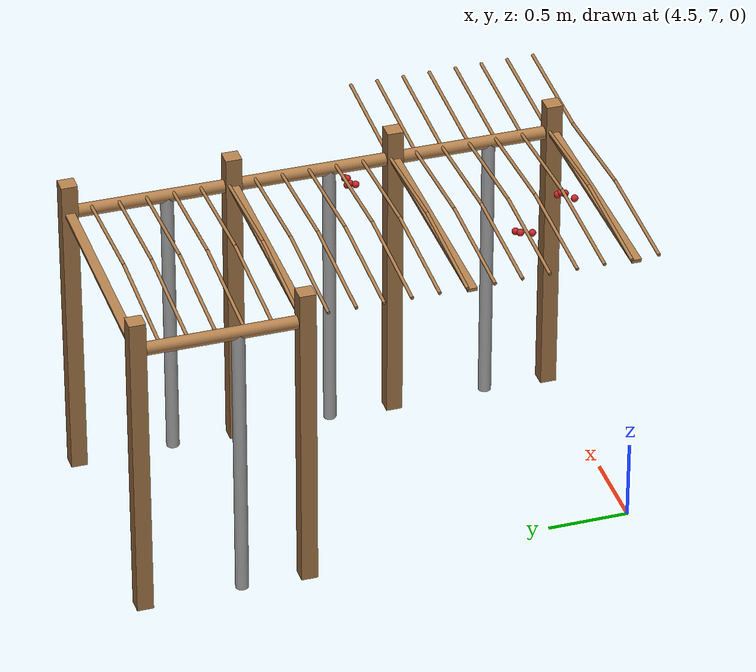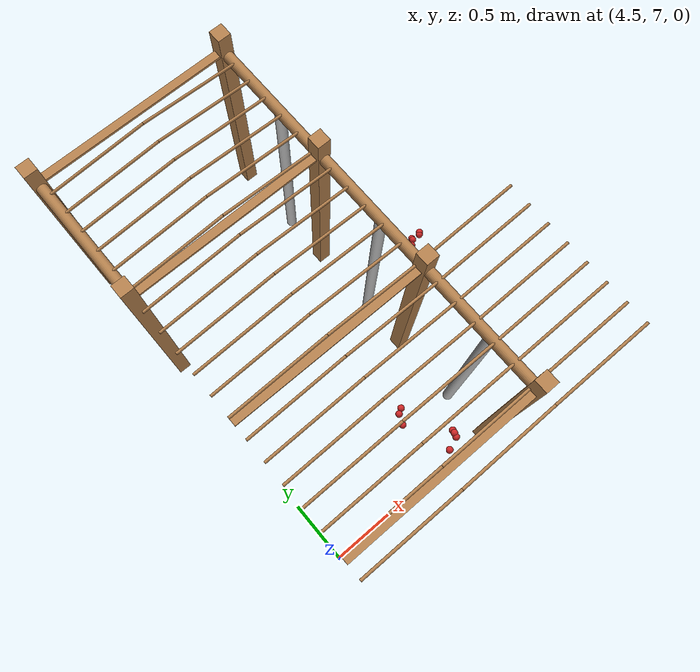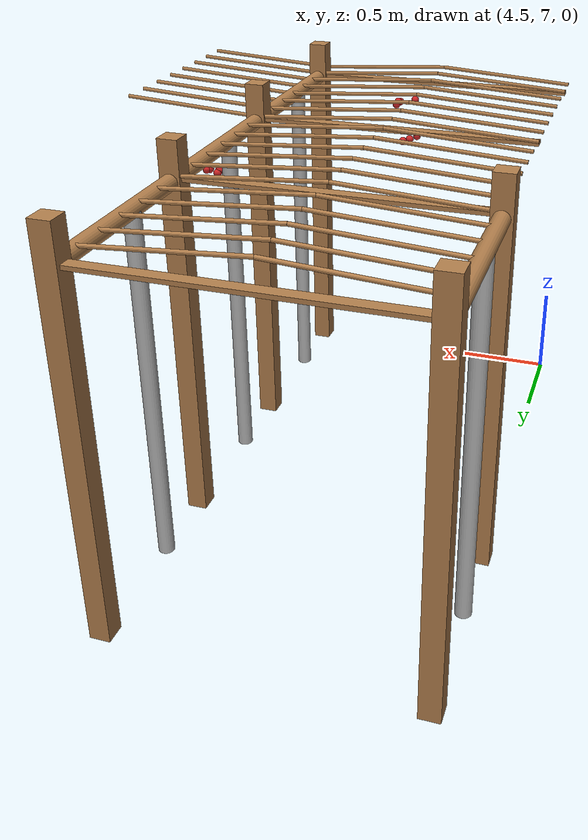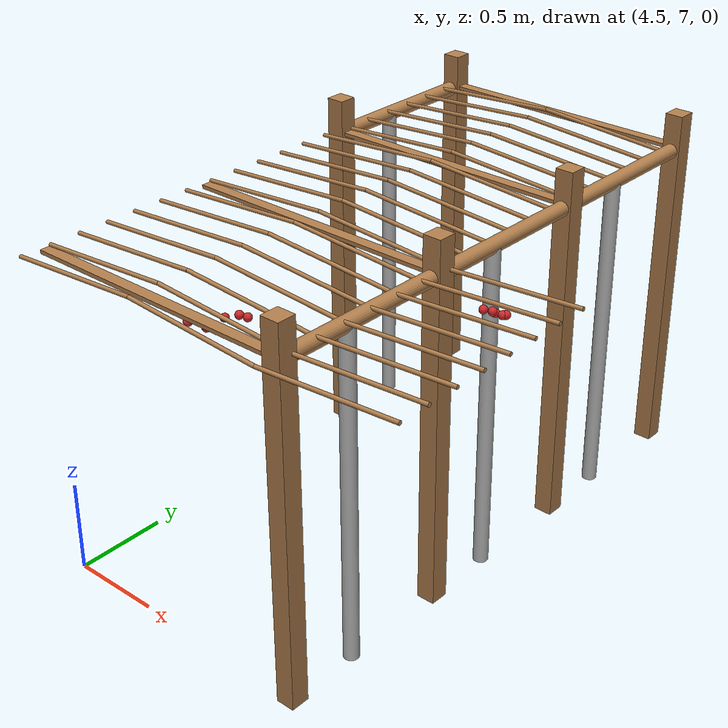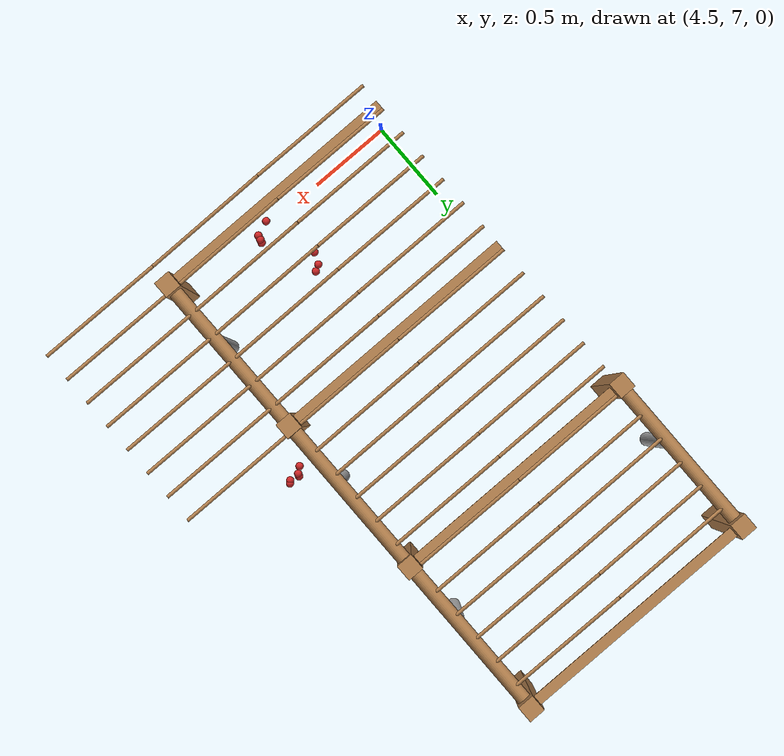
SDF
<sdf version="1.4">
 <model name="pergola">
  <include><name>post_42</name><pose>4.5 9.0 0 0 0 0</pose><uri>model://post</uri></include>
  <include><name>post_43</name><pose>4.5 10.0 0 0 0 0</pose><uri>model://post</uri></include>
  <include><name>post_51</name><pose>6.0 7.0 0 0 0 0</pose><uri>model://post</uri></include>
  <include><name>post_52</name><pose>6.0 8.0 0 0 0 0</pose><uri>model://post</uri></include>
  <include><name>post_53</name><pose>6.0 9.0 0 0 0 0</pose><uri>model://post</uri></include>
  <include><name>post_54</name><pose>6.0 10.0 0 0 0 0</pose><uri>model://post</uri></include>
  <link name="beam_40">
   <pose>5.25 7.0 1.81 0 0 0</pose>
   <collision name="collision"><geometry><box><size>1.5 0.06 0.02</size></box></geometry></collision>
   <visual name="visual">
    <geometry><box><size>1.5 0.06 0.02</size></box></geometry>
    <material><script><name>Gazebo/Wood</name></script></material>
   </visual>
   <inertial>
    <mass>5</mass>
    <inertia>
     <ixx>0.0016666666666666668</ixx>
     <ixy>0.0</ixy>
     <ixz>0.0</ixz>
     <iyy>0.9390000000000001</iyy>
     <iyz>0.0</iyz>
     <izz>0.9376666666666665</izz>
    </inertia>
   </inertial>
  </link>
  <link name="beam_41">
   <pose>5.25 8.0 1.81 0 0 0</pose>
   <collision name="collision"><geometry><box><size>1.5 0.06 0.02</size></box></geometry></collision>
   <visual name="visual">
    <geometry><box><size>1.5 0.06 0.02</size></box></geometry>
    <material><script><name>Gazebo/Wood</name></script></material>
   </visual>
   <inertial>
    <mass>5</mass>
    <inertia>
     <ixx>0.0016666666666666668</ixx>
     <ixy>0.0</ixy>
     <ixz>0.0</ixz>
     <iyy>0.9390000000000001</iyy>
     <iyz>0.0</iyz>
     <izz>0.9376666666666665</izz>
    </inertia>
   </inertial>
  </link>
  <link name="beam_42">
   <pose>5.25 9.0 1.81 0 0 0</pose>
   <collision name="collision"><geometry><box><size>1.5 0.06 0.02</size></box></geometry></collision>
   <visual name="visual">
    <geometry><box><size>1.5 0.06 0.02</size></box></geometry>
    <material><script><name>Gazebo/Wood</name></script></material>
   </visual>
   <inertial>
    <mass>5</mass>
    <inertia>
     <ixx>0.0016666666666666668</ixx>
     <ixy>0.0</ixy>
     <ixz>0.0</ixz>
     <iyy>0.9390000000000001</iyy>
     <iyz>0.0</iyz>
     <izz>0.9376666666666665</izz>
    </inertia>
   </inertial>
  </link>
  <link name="beam_43">
   <pose>5.25 10.0 1.81 0 0 0</pose>
   <collision name="collision"><geometry><box><size>1.5 0.06 0.02</size></box></geometry></collision>
   <visual name="visual">
    <geometry><box><size>1.5 0.06 0.02</size></box></geometry>
    <material><script><name>Gazebo/Wood</name></script></material>
   </visual>
   <inertial>
    <mass>5</mass>
    <inertia>
     <ixx>0.0016666666666666668</ixx>
     <ixy>0.0</ixy>
     <ixz>0.0</ixz>
     <iyy>0.9390000000000001</iyy>
     <iyz>0.0</iyz>
     <izz>0.9376666666666665</izz>
    </inertia>
   </inertial>
  </link>
  <include><name>tree_39</name><pose>4.5 9.4 0 0 0 0</pose><uri>model://tree_trunk</uri></include>
  <include><name>tree_47</name><pose>6.0 7.4 0 0 0 0</pose><uri>model://tree_trunk</uri></include>
  <include><name>tree_48</name><pose>6.0 8.4 0 0 0 0</pose><uri>model://tree_trunk</uri></include>
  <include><name>tree_49</name><pose>6.0 9.4 0 0 0 0</pose><uri>model://tree_trunk</uri></include>
  <link name="baseBranch_39">
   <pose>4.5 9.5 1.8 1.5707963267948966 0 0</pose>
   <collision name="collision">
    <geometry><cylinder><radius>0.04</radius><length>0.94</length></cylinder></geometry>
   </collision>
   <visual name="visual">
    <geometry><cylinder><radius>0.04</radius><length>0.94</length></cylinder></geometry>
    <material><script><name>Gazebo/WoodFloor</name></script></material>
   </visual>
   <inertial>
    <mass>10</mass>
    <inertia>
     <ixx>0.7403333333333334</ixx>
     <ixy>0.0</ixy>
     <ixz>0.0</ixz>
     <iyy>0.7403333333333334</iyy>
     <iyz>0.0</iyz>
     <izz>0.008</izz>
    </inertia>
   </inertial>
  </link>
  <link name="baseBranch_47">
   <pose>6.0 7.5 1.8 1.5707963267948966 0 0</pose>
   <collision name="collision">
    <geometry><cylinder><radius>0.04</radius><length>0.94</length></cylinder></geometry>
   </collision>
   <visual name="visual">
    <geometry><cylinder><radius>0.04</radius><length>0.94</length></cylinder></geometry>
    <material><script><name>Gazebo/WoodFloor</name></script></material>
   </visual>
   <inertial>
    <mass>10</mass>
    <inertia>
     <ixx>0.7403333333333334</ixx>
     <ixy>0.0</ixy>
     <ixz>0.0</ixz>
     <iyy>0.7403333333333334</iyy>
     <iyz>0.0</iyz>
     <izz>0.008</izz>
    </inertia>
   </inertial>
  </link>
  <link name="baseBranch_48">
   <pose>6.0 8.5 1.8 1.5707963267948966 0 0</pose>
   <collision name="collision">
    <geometry><cylinder><radius>0.04</radius><length>0.94</length></cylinder></geometry>
   </collision>
   <visual name="visual">
    <geometry><cylinder><radius>0.04</radius><length>0.94</length></cylinder></geometry>
    <material><script><name>Gazebo/WoodFloor</name></script></material>
   </visual>
   <inertial>
    <mass>10</mass>
    <inertia>
     <ixx>0.7403333333333334</ixx>
     <ixy>0.0</ixy>
     <ixz>0.0</ixz>
     <iyy>0.7403333333333334</iyy>
     <iyz>0.0</iyz>
     <izz>0.008</izz>
    </inertia>
   </inertial>
  </link>
  <link name="baseBranch_49">
   <pose>6.0 9.5 1.8 1.5707963267948966 0 0</pose>
   <collision name="collision">
    <geometry><cylinder><radius>0.04</radius><length>0.94</length></cylinder></geometry>
   </collision>
   <visual name="visual">
    <geometry><cylinder><radius>0.04</radius><length>0.94</length></cylinder></geometry>
    <material><script><name>Gazebo/WoodFloor</name></script></material>
   </visual>
   <inertial>
    <mass>10</mass>
    <inertia>
     <ixx>0.7403333333333334</ixx>
     <ixy>0.0</ixy>
     <ixz>0.0</ixz>
     <iyy>0.7403333333333334</iyy>
     <iyz>0.0</iyz>
     <izz>0.008</izz>
    </inertia>
   </inertial>
  </link>
  <link name="vine_442">
   <pose>4.875 6.863333333333333 1.85 0 1.5042281630190728 0</pose>
   <collision name="collision">
    <geometry><cylinder><radius>0.01</radius><length>0.7516648189186453</length></cylinder></geometry>
   </collision>
   <visual name="visual">
    <geometry><cylinder><radius>0.01</radius><length>0.7516648189186453</length></cylinder></geometry>
    <material><script><name>Gazebo/WoodFloor</name></script></material>
   </visual>
   <inertial>
    <mass>5</mass>
    <inertia>
     <ixx>0.23554166666666657</ixx>
     <ixy>0.0</ixy>
     <ixz>0.0</ixz>
     <iyy>0.23554166666666657</iyy>
     <iyz>0.0</iyz>
     <izz>0.00025</izz>
    </inertia>
   </inertial>
  </link>
  <link name="vine_443">
   <pose>5.625 6.863333333333333 1.85 0 -1.5042281630190728 0</pose>
   <collision name="collision">
    <geometry><cylinder><radius>0.01</radius><length>0.7516648189186453</length></cylinder></geometry>
   </collision>
   <visual name="visual">
    <geometry><cylinder><radius>0.01</radius><length>0.7516648189186453</length></cylinder></geometry>
    <material><script><name>Gazebo/WoodFloor</name></script></material>
   </visual>
   <inertial>
    <mass>5</mass>
    <inertia>
     <ixx>0.23554166666666657</ixx>
     <ixy>0.0</ixy>
     <ixz>0.0</ixz>
     <iyy>0.23554166666666657</iyy>
     <iyz>0.0</iyz>
     <izz>0.00025</izz>
    </inertia>
   </inertial>
  </link>
  <link name="vine_444">
   <pose>4.875 7.03 1.85 0 1.5042281630190728 0</pose>
   <collision name="collision">
    <geometry><cylinder><radius>0.01</radius><length>0.7516648189186453</length></cylinder></geometry>
   </collision>
   <visual name="visual">
    <geometry><cylinder><radius>0.01</radius><length>0.7516648189186453</length></cylinder></geometry>
    <material><script><name>Gazebo/WoodFloor</name></script></material>
   </visual>
   <inertial>
    <mass>5</mass>
    <inertia>
     <ixx>0.23554166666666657</ixx>
     <ixy>0.0</ixy>
     <ixz>0.0</ixz>
     <iyy>0.23554166666666657</iyy>
     <iyz>0.0</iyz>
     <izz>0.00025</izz>
    </inertia>
   </inertial>
  </link>
  <link name="vine_445">
   <pose>5.625 7.03 1.85 0 -1.5042281630190728 0</pose>
   <collision name="collision">
    <geometry><cylinder><radius>0.01</radius><length>0.7516648189186453</length></cylinder></geometry>
   </collision>
   <visual name="visual">
    <geometry><cylinder><radius>0.01</radius><length>0.7516648189186453</length></cylinder></geometry>
    <material><script><name>Gazebo/WoodFloor</name></script></material>
   </visual>
   <inertial>
    <mass>5</mass>
    <inertia>
     <ixx>0.23554166666666657</ixx>
     <ixy>0.0</ixy>
     <ixz>0.0</ixz>
     <iyy>0.23554166666666657</iyy>
     <iyz>0.0</iyz>
     <izz>0.00025</izz>
    </inertia>
   </inertial>
  </link>
  <link name="vine_446">
   <pose>4.875 7.196666666666666 1.85 0 1.5042281630190728 0</pose>
   <collision name="collision">
    <geometry><cylinder><radius>0.01</radius><length>0.7516648189186453</length></cylinder></geometry>
   </collision>
   <visual name="visual">
    <geometry><cylinder><radius>0.01</radius><length>0.7516648189186453</length></cylinder></geometry>
    <material><script><name>Gazebo/WoodFloor</name></script></material>
   </visual>
   <inertial>
    <mass>5</mass>
    <inertia>
     <ixx>0.23554166666666657</ixx>
     <ixy>0.0</ixy>
     <ixz>0.0</ixz>
     <iyy>0.23554166666666657</iyy>
     <iyz>0.0</iyz>
     <izz>0.00025</izz>
    </inertia>
   </inertial>
  </link>
  <link name="vine_447">
   <pose>5.625 7.196666666666666 1.85 0 -1.5042281630190728 0</pose>
   <collision name="collision">
    <geometry><cylinder><radius>0.01</radius><length>0.7516648189186453</length></cylinder></geometry>
   </collision>
   <visual name="visual">
    <geometry><cylinder><radius>0.01</radius><length>0.7516648189186453</length></cylinder></geometry>
    <material><script><name>Gazebo/WoodFloor</name></script></material>
   </visual>
   <inertial>
    <mass>5</mass>
    <inertia>
     <ixx>0.23554166666666657</ixx>
     <ixy>0.0</ixy>
     <ixz>0.0</ixz>
     <iyy>0.23554166666666657</iyy>
     <iyz>0.0</iyz>
     <izz>0.00025</izz>
    </inertia>
   </inertial>
  </link>
  <link name="vine_448">
   <pose>4.875 7.363333333333333 1.85 0 1.5042281630190728 0</pose>
   <collision name="collision">
    <geometry><cylinder><radius>0.01</radius><length>0.7516648189186453</length></cylinder></geometry>
   </collision>
   <visual name="visual">
    <geometry><cylinder><radius>0.01</radius><length>0.7516648189186453</length></cylinder></geometry>
    <material><script><name>Gazebo/WoodFloor</name></script></material>
   </visual>
   <inertial>
    <mass>5</mass>
    <inertia>
     <ixx>0.23554166666666657</ixx>
     <ixy>0.0</ixy>
     <ixz>0.0</ixz>
     <iyy>0.23554166666666657</iyy>
     <iyz>0.0</iyz>
     <izz>0.00025</izz>
    </inertia>
   </inertial>
  </link>
  <link name="vine_449">
   <pose>5.625 7.363333333333333 1.85 0 -1.5042281630190728 0</pose>
   <collision name="collision">
    <geometry><cylinder><radius>0.01</radius><length>0.7516648189186453</length></cylinder></geometry>
   </collision>
   <visual name="visual">
    <geometry><cylinder><radius>0.01</radius><length>0.7516648189186453</length></cylinder></geometry>
    <material><script><name>Gazebo/WoodFloor</name></script></material>
   </visual>
   <inertial>
    <mass>5</mass>
    <inertia>
     <ixx>0.23554166666666657</ixx>
     <ixy>0.0</ixy>
     <ixz>0.0</ixz>
     <iyy>0.23554166666666657</iyy>
     <iyz>0.0</iyz>
     <izz>0.00025</izz>
    </inertia>
   </inertial>
  </link>
  <link name="vine_450">
   <pose>4.875 7.53 1.85 0 1.5042281630190728 0</pose>
   <collision name="collision">
    <geometry><cylinder><radius>0.01</radius><length>0.7516648189186453</length></cylinder></geometry>
   </collision>
   <visual name="visual">
    <geometry><cylinder><radius>0.01</radius><length>0.7516648189186453</length></cylinder></geometry>
    <material><script><name>Gazebo/WoodFloor</name></script></material>
   </visual>
   <inertial>
    <mass>5</mass>
    <inertia>
     <ixx>0.23554166666666657</ixx>
     <ixy>0.0</ixy>
     <ixz>0.0</ixz>
     <iyy>0.23554166666666657</iyy>
     <iyz>0.0</iyz>
     <izz>0.00025</izz>
    </inertia>
   </inertial>
  </link>
  <link name="vine_451">
   <pose>5.625 7.53 1.85 0 -1.5042281630190728 0</pose>
   <collision name="collision">
    <geometry><cylinder><radius>0.01</radius><length>0.7516648189186453</length></cylinder></geometry>
   </collision>
   <visual name="visual">
    <geometry><cylinder><radius>0.01</radius><length>0.7516648189186453</length></cylinder></geometry>
    <material><script><name>Gazebo/WoodFloor</name></script></material>
   </visual>
   <inertial>
    <mass>5</mass>
    <inertia>
     <ixx>0.23554166666666657</ixx>
     <ixy>0.0</ixy>
     <ixz>0.0</ixz>
     <iyy>0.23554166666666657</iyy>
     <iyz>0.0</iyz>
     <izz>0.00025</izz>
    </inertia>
   </inertial>
  </link>
  <link name="vine_452">
   <pose>4.875 7.696666666666666 1.85 0 1.5042281630190728 0</pose>
   <collision name="collision">
    <geometry><cylinder><radius>0.01</radius><length>0.7516648189186453</length></cylinder></geometry>
   </collision>
   <visual name="visual">
    <geometry><cylinder><radius>0.01</radius><length>0.7516648189186453</length></cylinder></geometry>
    <material><script><name>Gazebo/WoodFloor</name></script></material>
   </visual>
   <inertial>
    <mass>5</mass>
    <inertia>
     <ixx>0.23554166666666657</ixx>
     <ixy>0.0</ixy>
     <ixz>0.0</ixz>
     <iyy>0.23554166666666657</iyy>
     <iyz>0.0</iyz>
     <izz>0.00025</izz>
    </inertia>
   </inertial>
  </link>
  <link name="vine_453">
   <pose>5.625 7.696666666666666 1.85 0 -1.5042281630190728 0</pose>
   <collision name="collision">
    <geometry><cylinder><radius>0.01</radius><length>0.7516648189186453</length></cylinder></geometry>
   </collision>
   <visual name="visual">
    <geometry><cylinder><radius>0.01</radius><length>0.7516648189186453</length></cylinder></geometry>
    <material><script><name>Gazebo/WoodFloor</name></script></material>
   </visual>
   <inertial>
    <mass>5</mass>
    <inertia>
     <ixx>0.23554166666666657</ixx>
     <ixy>0.0</ixy>
     <ixz>0.0</ixz>
     <iyy>0.23554166666666657</iyy>
     <iyz>0.0</iyz>
     <izz>0.00025</izz>
    </inertia>
   </inertial>
  </link>
  <link name="vine_454">
   <pose>4.875 7.863333333333333 1.85 0 1.5042281630190728 0</pose>
   <collision name="collision">
    <geometry><cylinder><radius>0.01</radius><length>0.7516648189186453</length></cylinder></geometry>
   </collision>
   <visual name="visual">
    <geometry><cylinder><radius>0.01</radius><length>0.7516648189186453</length></cylinder></geometry>
    <material><script><name>Gazebo/WoodFloor</name></script></material>
   </visual>
   <inertial>
    <mass>5</mass>
    <inertia>
     <ixx>0.23554166666666657</ixx>
     <ixy>0.0</ixy>
     <ixz>0.0</ixz>
     <iyy>0.23554166666666657</iyy>
     <iyz>0.0</iyz>
     <izz>0.00025</izz>
    </inertia>
   </inertial>
  </link>
  <link name="vine_455">
   <pose>5.625 7.863333333333333 1.85 0 -1.5042281630190728 0</pose>
   <collision name="collision">
    <geometry><cylinder><radius>0.01</radius><length>0.7516648189186453</length></cylinder></geometry>
   </collision>
   <visual name="visual">
    <geometry><cylinder><radius>0.01</radius><length>0.7516648189186453</length></cylinder></geometry>
    <material><script><name>Gazebo/WoodFloor</name></script></material>
   </visual>
   <inertial>
    <mass>5</mass>
    <inertia>
     <ixx>0.23554166666666657</ixx>
     <ixy>0.0</ixy>
     <ixz>0.0</ixz>
     <iyy>0.23554166666666657</iyy>
     <iyz>0.0</iyz>
     <izz>0.00025</izz>
    </inertia>
   </inertial>
  </link>
  <link name="vine_456">
   <pose>4.875 8.03 1.85 0 1.5042281630190728 0</pose>
   <collision name="collision">
    <geometry><cylinder><radius>0.01</radius><length>0.7516648189186453</length></cylinder></geometry>
   </collision>
   <visual name="visual">
    <geometry><cylinder><radius>0.01</radius><length>0.7516648189186453</length></cylinder></geometry>
    <material><script><name>Gazebo/WoodFloor</name></script></material>
   </visual>
   <inertial>
    <mass>5</mass>
    <inertia>
     <ixx>0.23554166666666657</ixx>
     <ixy>0.0</ixy>
     <ixz>0.0</ixz>
     <iyy>0.23554166666666657</iyy>
     <iyz>0.0</iyz>
     <izz>0.00025</izz>
    </inertia>
   </inertial>
  </link>
  <link name="vine_457">
   <pose>5.625 8.03 1.85 0 -1.5042281630190728 0</pose>
   <collision name="collision">
    <geometry><cylinder><radius>0.01</radius><length>0.7516648189186453</length></cylinder></geometry>
   </collision>
   <visual name="visual">
    <geometry><cylinder><radius>0.01</radius><length>0.7516648189186453</length></cylinder></geometry>
    <material><script><name>Gazebo/WoodFloor</name></script></material>
   </visual>
   <inertial>
    <mass>5</mass>
    <inertia>
     <ixx>0.23554166666666657</ixx>
     <ixy>0.0</ixy>
     <ixz>0.0</ixz>
     <iyy>0.23554166666666657</iyy>
     <iyz>0.0</iyz>
     <izz>0.00025</izz>
    </inertia>
   </inertial>
  </link>
  <link name="vine_458">
   <pose>4.875 8.196666666666665 1.85 0 1.5042281630190728 0</pose>
   <collision name="collision">
    <geometry><cylinder><radius>0.01</radius><length>0.7516648189186453</length></cylinder></geometry>
   </collision>
   <visual name="visual">
    <geometry><cylinder><radius>0.01</radius><length>0.7516648189186453</length></cylinder></geometry>
    <material><script><name>Gazebo/WoodFloor</name></script></material>
   </visual>
   <inertial>
    <mass>5</mass>
    <inertia>
     <ixx>0.23554166666666657</ixx>
     <ixy>0.0</ixy>
     <ixz>0.0</ixz>
     <iyy>0.23554166666666657</iyy>
     <iyz>0.0</iyz>
     <izz>0.00025</izz>
    </inertia>
   </inertial>
  </link>
  <link name="vine_459">
   <pose>5.625 8.196666666666665 1.85 0 -1.5042281630190728 0</pose>
   <collision name="collision">
    <geometry><cylinder><radius>0.01</radius><length>0.7516648189186453</length></cylinder></geometry>
   </collision>
   <visual name="visual">
    <geometry><cylinder><radius>0.01</radius><length>0.7516648189186453</length></cylinder></geometry>
    <material><script><name>Gazebo/WoodFloor</name></script></material>
   </visual>
   <inertial>
    <mass>5</mass>
    <inertia>
     <ixx>0.23554166666666657</ixx>
     <ixy>0.0</ixy>
     <ixz>0.0</ixz>
     <iyy>0.23554166666666657</iyy>
     <iyz>0.0</iyz>
     <izz>0.00025</izz>
    </inertia>
   </inertial>
  </link>
  <link name="vine_460">
   <pose>4.875 8.363333333333332 1.85 0 1.5042281630190728 0</pose>
   <collision name="collision">
    <geometry><cylinder><radius>0.01</radius><length>0.7516648189186453</length></cylinder></geometry>
   </collision>
   <visual name="visual">
    <geometry><cylinder><radius>0.01</radius><length>0.7516648189186453</length></cylinder></geometry>
    <material><script><name>Gazebo/WoodFloor</name></script></material>
   </visual>
   <inertial>
    <mass>5</mass>
    <inertia>
     <ixx>0.23554166666666657</ixx>
     <ixy>0.0</ixy>
     <ixz>0.0</ixz>
     <iyy>0.23554166666666657</iyy>
     <iyz>0.0</iyz>
     <izz>0.00025</izz>
    </inertia>
   </inertial>
  </link>
  <link name="vine_461">
   <pose>5.625 8.363333333333332 1.85 0 -1.5042281630190728 0</pose>
   <collision name="collision">
    <geometry><cylinder><radius>0.01</radius><length>0.7516648189186453</length></cylinder></geometry>
   </collision>
   <visual name="visual">
    <geometry><cylinder><radius>0.01</radius><length>0.7516648189186453</length></cylinder></geometry>
    <material><script><name>Gazebo/WoodFloor</name></script></material>
   </visual>
   <inertial>
    <mass>5</mass>
    <inertia>
     <ixx>0.23554166666666657</ixx>
     <ixy>0.0</ixy>
     <ixz>0.0</ixz>
     <iyy>0.23554166666666657</iyy>
     <iyz>0.0</iyz>
     <izz>0.00025</izz>
    </inertia>
   </inertial>
  </link>
  <link name="vine_462">
   <pose>4.875 8.53 1.85 0 1.5042281630190728 0</pose>
   <collision name="collision">
    <geometry><cylinder><radius>0.01</radius><length>0.7516648189186453</length></cylinder></geometry>
   </collision>
   <visual name="visual">
    <geometry><cylinder><radius>0.01</radius><length>0.7516648189186453</length></cylinder></geometry>
    <material><script><name>Gazebo/WoodFloor</name></script></material>
   </visual>
   <inertial>
    <mass>5</mass>
    <inertia>
     <ixx>0.23554166666666657</ixx>
     <ixy>0.0</ixy>
     <ixz>0.0</ixz>
     <iyy>0.23554166666666657</iyy>
     <iyz>0.0</iyz>
     <izz>0.00025</izz>
    </inertia>
   </inertial>
  </link>
  <link name="vine_463">
   <pose>5.625 8.53 1.85 0 -1.5042281630190728 0</pose>
   <collision name="collision">
    <geometry><cylinder><radius>0.01</radius><length>0.7516648189186453</length></cylinder></geometry>
   </collision>
   <visual name="visual">
    <geometry><cylinder><radius>0.01</radius><length>0.7516648189186453</length></cylinder></geometry>
    <material><script><name>Gazebo/WoodFloor</name></script></material>
   </visual>
   <inertial>
    <mass>5</mass>
    <inertia>
     <ixx>0.23554166666666657</ixx>
     <ixy>0.0</ixy>
     <ixz>0.0</ixz>
     <iyy>0.23554166666666657</iyy>
     <iyz>0.0</iyz>
     <izz>0.00025</izz>
    </inertia>
   </inertial>
  </link>
  <link name="vine_464">
   <pose>4.875 8.696666666666665 1.85 0 1.5042281630190728 0</pose>
   <collision name="collision">
    <geometry><cylinder><radius>0.01</radius><length>0.7516648189186453</length></cylinder></geometry>
   </collision>
   <visual name="visual">
    <geometry><cylinder><radius>0.01</radius><length>0.7516648189186453</length></cylinder></geometry>
    <material><script><name>Gazebo/WoodFloor</name></script></material>
   </visual>
   <inertial>
    <mass>5</mass>
    <inertia>
     <ixx>0.23554166666666657</ixx>
     <ixy>0.0</ixy>
     <ixz>0.0</ixz>
     <iyy>0.23554166666666657</iyy>
     <iyz>0.0</iyz>
     <izz>0.00025</izz>
    </inertia>
   </inertial>
  </link>
  <link name="vine_465">
   <pose>5.625 8.696666666666665 1.85 0 -1.5042281630190728 0</pose>
   <collision name="collision">
    <geometry><cylinder><radius>0.01</radius><length>0.7516648189186453</length></cylinder></geometry>
   </collision>
   <visual name="visual">
    <geometry><cylinder><radius>0.01</radius><length>0.7516648189186453</length></cylinder></geometry>
    <material><script><name>Gazebo/WoodFloor</name></script></material>
   </visual>
   <inertial>
    <mass>5</mass>
    <inertia>
     <ixx>0.23554166666666657</ixx>
     <ixy>0.0</ixy>
     <ixz>0.0</ixz>
     <iyy>0.23554166666666657</iyy>
     <iyz>0.0</iyz>
     <izz>0.00025</izz>
    </inertia>
   </inertial>
  </link>
  <link name="vine_466">
   <pose>4.875 8.863333333333332 1.85 0 1.5042281630190728 0</pose>
   <collision name="collision">
    <geometry><cylinder><radius>0.01</radius><length>0.7516648189186453</length></cylinder></geometry>
   </collision>
   <visual name="visual">
    <geometry><cylinder><radius>0.01</radius><length>0.7516648189186453</length></cylinder></geometry>
    <material><script><name>Gazebo/WoodFloor</name></script></material>
   </visual>
   <inertial>
    <mass>5</mass>
    <inertia>
     <ixx>0.23554166666666657</ixx>
     <ixy>0.0</ixy>
     <ixz>0.0</ixz>
     <iyy>0.23554166666666657</iyy>
     <iyz>0.0</iyz>
     <izz>0.00025</izz>
    </inertia>
   </inertial>
  </link>
  <link name="vine_467">
   <pose>5.625 8.863333333333332 1.85 0 -1.5042281630190728 0</pose>
   <collision name="collision">
    <geometry><cylinder><radius>0.01</radius><length>0.7516648189186453</length></cylinder></geometry>
   </collision>
   <visual name="visual">
    <geometry><cylinder><radius>0.01</radius><length>0.7516648189186453</length></cylinder></geometry>
    <material><script><name>Gazebo/WoodFloor</name></script></material>
   </visual>
   <inertial>
    <mass>5</mass>
    <inertia>
     <ixx>0.23554166666666657</ixx>
     <ixy>0.0</ixy>
     <ixz>0.0</ixz>
     <iyy>0.23554166666666657</iyy>
     <iyz>0.0</iyz>
     <izz>0.00025</izz>
    </inertia>
   </inertial>
  </link>
  <link name="vine_468">
   <pose>4.875 9.03 1.85 0 1.5042281630190728 0</pose>
   <collision name="collision">
    <geometry><cylinder><radius>0.01</radius><length>0.7516648189186453</length></cylinder></geometry>
   </collision>
   <visual name="visual">
    <geometry><cylinder><radius>0.01</radius><length>0.7516648189186453</length></cylinder></geometry>
    <material><script><name>Gazebo/WoodFloor</name></script></material>
   </visual>
   <inertial>
    <mass>5</mass>
    <inertia>
     <ixx>0.23554166666666657</ixx>
     <ixy>0.0</ixy>
     <ixz>0.0</ixz>
     <iyy>0.23554166666666657</iyy>
     <iyz>0.0</iyz>
     <izz>0.00025</izz>
    </inertia>
   </inertial>
  </link>
  <link name="vine_469">
   <pose>5.625 9.03 1.85 0 -1.5042281630190728 0</pose>
   <collision name="collision">
    <geometry><cylinder><radius>0.01</radius><length>0.7516648189186453</length></cylinder></geometry>
   </collision>
   <visual name="visual">
    <geometry><cylinder><radius>0.01</radius><length>0.7516648189186453</length></cylinder></geometry>
    <material><script><name>Gazebo/WoodFloor</name></script></material>
   </visual>
   <inertial>
    <mass>5</mass>
    <inertia>
     <ixx>0.23554166666666657</ixx>
     <ixy>0.0</ixy>
     <ixz>0.0</ixz>
     <iyy>0.23554166666666657</iyy>
     <iyz>0.0</iyz>
     <izz>0.00025</izz>
    </inertia>
   </inertial>
  </link>
  <link name="vine_470">
   <pose>4.875 9.196666666666665 1.85 0 1.5042281630190728 0</pose>
   <collision name="collision">
    <geometry><cylinder><radius>0.01</radius><length>0.7516648189186453</length></cylinder></geometry>
   </collision>
   <visual name="visual">
    <geometry><cylinder><radius>0.01</radius><length>0.7516648189186453</length></cylinder></geometry>
    <material><script><name>Gazebo/WoodFloor</name></script></material>
   </visual>
   <inertial>
    <mass>5</mass>
    <inertia>
     <ixx>0.23554166666666657</ixx>
     <ixy>0.0</ixy>
     <ixz>0.0</ixz>
     <iyy>0.23554166666666657</iyy>
     <iyz>0.0</iyz>
     <izz>0.00025</izz>
    </inertia>
   </inertial>
  </link>
  <link name="vine_471">
   <pose>5.625 9.196666666666665 1.85 0 -1.5042281630190728 0</pose>
   <collision name="collision">
    <geometry><cylinder><radius>0.01</radius><length>0.7516648189186453</length></cylinder></geometry>
   </collision>
   <visual name="visual">
    <geometry><cylinder><radius>0.01</radius><length>0.7516648189186453</length></cylinder></geometry>
    <material><script><name>Gazebo/WoodFloor</name></script></material>
   </visual>
   <inertial>
    <mass>5</mass>
    <inertia>
     <ixx>0.23554166666666657</ixx>
     <ixy>0.0</ixy>
     <ixz>0.0</ixz>
     <iyy>0.23554166666666657</iyy>
     <iyz>0.0</iyz>
     <izz>0.00025</izz>
    </inertia>
   </inertial>
  </link>
  <link name="vine_472">
   <pose>4.875 9.363333333333332 1.85 0 1.5042281630190728 0</pose>
   <collision name="collision">
    <geometry><cylinder><radius>0.01</radius><length>0.7516648189186453</length></cylinder></geometry>
   </collision>
   <visual name="visual">
    <geometry><cylinder><radius>0.01</radius><length>0.7516648189186453</length></cylinder></geometry>
    <material><script><name>Gazebo/WoodFloor</name></script></material>
   </visual>
   <inertial>
    <mass>5</mass>
    <inertia>
     <ixx>0.23554166666666657</ixx>
     <ixy>0.0</ixy>
     <ixz>0.0</ixz>
     <iyy>0.23554166666666657</iyy>
     <iyz>0.0</iyz>
     <izz>0.00025</izz>
    </inertia>
   </inertial>
  </link>
  <link name="vine_473">
   <pose>5.625 9.363333333333332 1.85 0 -1.5042281630190728 0</pose>
   <collision name="collision">
    <geometry><cylinder><radius>0.01</radius><length>0.7516648189186453</length></cylinder></geometry>
   </collision>
   <visual name="visual">
    <geometry><cylinder><radius>0.01</radius><length>0.7516648189186453</length></cylinder></geometry>
    <material><script><name>Gazebo/WoodFloor</name></script></material>
   </visual>
   <inertial>
    <mass>5</mass>
    <inertia>
     <ixx>0.23554166666666657</ixx>
     <ixy>0.0</ixy>
     <ixz>0.0</ixz>
     <iyy>0.23554166666666657</iyy>
     <iyz>0.0</iyz>
     <izz>0.00025</izz>
    </inertia>
   </inertial>
  </link>
  <link name="vine_474">
   <pose>4.875 9.53 1.85 0 1.5042281630190728 0</pose>
   <collision name="collision">
    <geometry><cylinder><radius>0.01</radius><length>0.7516648189186453</length></cylinder></geometry>
   </collision>
   <visual name="visual">
    <geometry><cylinder><radius>0.01</radius><length>0.7516648189186453</length></cylinder></geometry>
    <material><script><name>Gazebo/WoodFloor</name></script></material>
   </visual>
   <inertial>
    <mass>5</mass>
    <inertia>
     <ixx>0.23554166666666657</ixx>
     <ixy>0.0</ixy>
     <ixz>0.0</ixz>
     <iyy>0.23554166666666657</iyy>
     <iyz>0.0</iyz>
     <izz>0.00025</izz>
    </inertia>
   </inertial>
  </link>
  <link name="vine_475">
   <pose>5.625 9.53 1.85 0 -1.5042281630190728 0</pose>
   <collision name="collision">
    <geometry><cylinder><radius>0.01</radius><length>0.7516648189186453</length></cylinder></geometry>
   </collision>
   <visual name="visual">
    <geometry><cylinder><radius>0.01</radius><length>0.7516648189186453</length></cylinder></geometry>
    <material><script><name>Gazebo/WoodFloor</name></script></material>
   </visual>
   <inertial>
    <mass>5</mass>
    <inertia>
     <ixx>0.23554166666666657</ixx>
     <ixy>0.0</ixy>
     <ixz>0.0</ixz>
     <iyy>0.23554166666666657</iyy>
     <iyz>0.0</iyz>
     <izz>0.00025</izz>
    </inertia>
   </inertial>
  </link>
  <link name="vine_476">
   <pose>4.875 9.696666666666665 1.85 0 1.5042281630190728 0</pose>
   <collision name="collision">
    <geometry><cylinder><radius>0.01</radius><length>0.7516648189186453</length></cylinder></geometry>
   </collision>
   <visual name="visual">
    <geometry><cylinder><radius>0.01</radius><length>0.7516648189186453</length></cylinder></geometry>
    <material><script><name>Gazebo/WoodFloor</name></script></material>
   </visual>
   <inertial>
    <mass>5</mass>
    <inertia>
     <ixx>0.23554166666666657</ixx>
     <ixy>0.0</ixy>
     <ixz>0.0</ixz>
     <iyy>0.23554166666666657</iyy>
     <iyz>0.0</iyz>
     <izz>0.00025</izz>
    </inertia>
   </inertial>
  </link>
  <link name="vine_477">
   <pose>5.625 9.696666666666665 1.85 0 -1.5042281630190728 0</pose>
   <collision name="collision">
    <geometry><cylinder><radius>0.01</radius><length>0.7516648189186453</length></cylinder></geometry>
   </collision>
   <visual name="visual">
    <geometry><cylinder><radius>0.01</radius><length>0.7516648189186453</length></cylinder></geometry>
    <material><script><name>Gazebo/WoodFloor</name></script></material>
   </visual>
   <inertial>
    <mass>5</mass>
    <inertia>
     <ixx>0.23554166666666657</ixx>
     <ixy>0.0</ixy>
     <ixz>0.0</ixz>
     <iyy>0.23554166666666657</iyy>
     <iyz>0.0</iyz>
     <izz>0.00025</izz>
    </inertia>
   </inertial>
  </link>
  <link name="vine_478">
   <pose>4.875 9.863333333333332 1.85 0 1.5042281630190728 0</pose>
   <collision name="collision">
    <geometry><cylinder><radius>0.01</radius><length>0.7516648189186453</length></cylinder></geometry>
   </collision>
   <visual name="visual">
    <geometry><cylinder><radius>0.01</radius><length>0.7516648189186453</length></cylinder></geometry>
    <material><script><name>Gazebo/WoodFloor</name></script></material>
   </visual>
   <inertial>
    <mass>5</mass>
    <inertia>
     <ixx>0.23554166666666657</ixx>
     <ixy>0.0</ixy>
     <ixz>0.0</ixz>
     <iyy>0.23554166666666657</iyy>
     <iyz>0.0</iyz>
     <izz>0.00025</izz>
    </inertia>
   </inertial>
  </link>
  <link name="vine_479">
   <pose>5.625 9.863333333333332 1.85 0 -1.5042281630190728 0</pose>
   <collision name="collision">
    <geometry><cylinder><radius>0.01</radius><length>0.7516648189186453</length></cylinder></geometry>
   </collision>
   <visual name="visual">
    <geometry><cylinder><radius>0.01</radius><length>0.7516648189186453</length></cylinder></geometry>
    <material><script><name>Gazebo/WoodFloor</name></script></material>
   </visual>
   <inertial>
    <mass>5</mass>
    <inertia>
     <ixx>0.23554166666666657</ixx>
     <ixy>0.0</ixy>
     <ixz>0.0</ixz>
     <iyy>0.23554166666666657</iyy>
     <iyz>0.0</iyz>
     <izz>0.00025</izz>
    </inertia>
   </inertial>
  </link>
  <link name="vine_562">
   <pose>6.375 6.863333333333333 1.85 0 1.5042281630190728 0</pose>
   <collision name="collision">
    <geometry><cylinder><radius>0.01</radius><length>0.7516648189186453</length></cylinder></geometry>
   </collision>
   <visual name="visual">
    <geometry><cylinder><radius>0.01</radius><length>0.7516648189186453</length></cylinder></geometry>
    <material><script><name>Gazebo/WoodFloor</name></script></material>
   </visual>
   <inertial>
    <mass>5</mass>
    <inertia>
     <ixx>0.23554166666666657</ixx>
     <ixy>0.0</ixy>
     <ixz>0.0</ixz>
     <iyy>0.23554166666666657</iyy>
     <iyz>0.0</iyz>
     <izz>0.00025</izz>
    </inertia>
   </inertial>
  </link>
  <link name="vine_564">
   <pose>6.375 7.03 1.85 0 1.5042281630190728 0</pose>
   <collision name="collision">
    <geometry><cylinder><radius>0.01</radius><length>0.7516648189186453</length></cylinder></geometry>
   </collision>
   <visual name="visual">
    <geometry><cylinder><radius>0.01</radius><length>0.7516648189186453</length></cylinder></geometry>
    <material><script><name>Gazebo/WoodFloor</name></script></material>
   </visual>
   <inertial>
    <mass>5</mass>
    <inertia>
     <ixx>0.23554166666666657</ixx>
     <ixy>0.0</ixy>
     <ixz>0.0</ixz>
     <iyy>0.23554166666666657</iyy>
     <iyz>0.0</iyz>
     <izz>0.00025</izz>
    </inertia>
   </inertial>
  </link>
  <link name="vine_566">
   <pose>6.375 7.196666666666666 1.85 0 1.5042281630190728 0</pose>
   <collision name="collision">
    <geometry><cylinder><radius>0.01</radius><length>0.7516648189186453</length></cylinder></geometry>
   </collision>
   <visual name="visual">
    <geometry><cylinder><radius>0.01</radius><length>0.7516648189186453</length></cylinder></geometry>
    <material><script><name>Gazebo/WoodFloor</name></script></material>
   </visual>
   <inertial>
    <mass>5</mass>
    <inertia>
     <ixx>0.23554166666666657</ixx>
     <ixy>0.0</ixy>
     <ixz>0.0</ixz>
     <iyy>0.23554166666666657</iyy>
     <iyz>0.0</iyz>
     <izz>0.00025</izz>
    </inertia>
   </inertial>
  </link>
  <link name="vine_568">
   <pose>6.375 7.363333333333333 1.85 0 1.5042281630190728 0</pose>
   <collision name="collision">
    <geometry><cylinder><radius>0.01</radius><length>0.7516648189186453</length></cylinder></geometry>
   </collision>
   <visual name="visual">
    <geometry><cylinder><radius>0.01</radius><length>0.7516648189186453</length></cylinder></geometry>
    <material><script><name>Gazebo/WoodFloor</name></script></material>
   </visual>
   <inertial>
    <mass>5</mass>
    <inertia>
     <ixx>0.23554166666666657</ixx>
     <ixy>0.0</ixy>
     <ixz>0.0</ixz>
     <iyy>0.23554166666666657</iyy>
     <iyz>0.0</iyz>
     <izz>0.00025</izz>
    </inertia>
   </inertial>
  </link>
  <link name="vine_570">
   <pose>6.375 7.53 1.85 0 1.5042281630190728 0</pose>
   <collision name="collision">
    <geometry><cylinder><radius>0.01</radius><length>0.7516648189186453</length></cylinder></geometry>
   </collision>
   <visual name="visual">
    <geometry><cylinder><radius>0.01</radius><length>0.7516648189186453</length></cylinder></geometry>
    <material><script><name>Gazebo/WoodFloor</name></script></material>
   </visual>
   <inertial>
    <mass>5</mass>
    <inertia>
     <ixx>0.23554166666666657</ixx>
     <ixy>0.0</ixy>
     <ixz>0.0</ixz>
     <iyy>0.23554166666666657</iyy>
     <iyz>0.0</iyz>
     <izz>0.00025</izz>
    </inertia>
   </inertial>
  </link>
  <link name="vine_572">
   <pose>6.375 7.696666666666666 1.85 0 1.5042281630190728 0</pose>
   <collision name="collision">
    <geometry><cylinder><radius>0.01</radius><length>0.7516648189186453</length></cylinder></geometry>
   </collision>
   <visual name="visual">
    <geometry><cylinder><radius>0.01</radius><length>0.7516648189186453</length></cylinder></geometry>
    <material><script><name>Gazebo/WoodFloor</name></script></material>
   </visual>
   <inertial>
    <mass>5</mass>
    <inertia>
     <ixx>0.23554166666666657</ixx>
     <ixy>0.0</ixy>
     <ixz>0.0</ixz>
     <iyy>0.23554166666666657</iyy>
     <iyz>0.0</iyz>
     <izz>0.00025</izz>
    </inertia>
   </inertial>
  </link>
  <link name="vine_574">
   <pose>6.375 7.863333333333333 1.85 0 1.5042281630190728 0</pose>
   <collision name="collision">
    <geometry><cylinder><radius>0.01</radius><length>0.7516648189186453</length></cylinder></geometry>
   </collision>
   <visual name="visual">
    <geometry><cylinder><radius>0.01</radius><length>0.7516648189186453</length></cylinder></geometry>
    <material><script><name>Gazebo/WoodFloor</name></script></material>
   </visual>
   <inertial>
    <mass>5</mass>
    <inertia>
     <ixx>0.23554166666666657</ixx>
     <ixy>0.0</ixy>
     <ixz>0.0</ixz>
     <iyy>0.23554166666666657</iyy>
     <iyz>0.0</iyz>
     <izz>0.00025</izz>
    </inertia>
   </inertial>
  </link>
  <link name="vine_576">
   <pose>6.375 8.03 1.85 0 1.5042281630190728 0</pose>
   <collision name="collision">
    <geometry><cylinder><radius>0.01</radius><length>0.7516648189186453</length></cylinder></geometry>
   </collision>
   <visual name="visual">
    <geometry><cylinder><radius>0.01</radius><length>0.7516648189186453</length></cylinder></geometry>
    <material><script><name>Gazebo/WoodFloor</name></script></material>
   </visual>
   <inertial>
    <mass>5</mass>
    <inertia>
     <ixx>0.23554166666666657</ixx>
     <ixy>0.0</ixy>
     <ixz>0.0</ixz>
     <iyy>0.23554166666666657</iyy>
     <iyz>0.0</iyz>
     <izz>0.00025</izz>
    </inertia>
   </inertial>
  </link>
  <link name="fruit_43">
   <pose>5.375143594983115 7.070911199299849 1.7174573301802907 0 0 0</pose>
   <collision name="fruit_collision_43"><geometry><sphere><radius>0.022</radius></sphere></geometry></collision>
   <visual name="visual">
    <geometry><sphere><radius>0.022</radius></sphere></geometry>
    <material><script><name>Gazebo/Red</name></script></material>
   </visual>
   <inertial>
    <mass>0.05</mass>
    <inertia>
     <ixx>9.679999999999999e-06</ixx>
     <ixy>0.0</ixy>
     <ixz>0.0</ixz>
     <iyy>9.679999999999999e-06</iyy>
     <iyz>0.0</iyz>
     <izz>9.679999999999999e-06</izz>
    </inertia>
   </inertial>
   <sensor name="fruit_contact_43" type="contact">
    <contact><collision>fruit_collision_43</collision></contact>
   </sensor>
  </link>
  <link name="fruit_90">
   <pose>5.284909400413357 7.363593332003193 1.586986597850638 0 0 0</pose>
   <collision name="fruit_collision_90"><geometry><sphere><radius>0.022</radius></sphere></geometry></collision>
   <visual name="visual">
    <geometry><sphere><radius>0.022</radius></sphere></geometry>
    <material><script><name>Gazebo/Red</name></script></material>
   </visual>
   <inertial>
    <mass>0.05</mass>
    <inertia>
     <ixx>9.679999999999999e-06</ixx>
     <ixy>0.0</ixy>
     <ixz>0.0</ixz>
     <iyy>9.679999999999999e-06</iyy>
     <iyz>0.0</iyz>
     <izz>9.679999999999999e-06</izz>
    </inertia>
   </inertial>
   <sensor name="fruit_contact_90" type="contact">
    <contact><collision>fruit_collision_90</collision></contact>
   </sensor>
  </link>
  <link name="fruit_99">
   <pose>6.108762526542486 8.198968827698005 1.582073837310068 0 0 0</pose>
   <collision name="fruit_collision_99"><geometry><sphere><radius>0.022</radius></sphere></geometry></collision>
   <visual name="visual">
    <geometry><sphere><radius>0.022</radius></sphere></geometry>
    <material><script><name>Gazebo/Red</name></script></material>
   </visual>
   <inertial>
    <mass>0.05</mass>
    <inertia>
     <ixx>9.679999999999999e-06</ixx>
     <ixy>0.0</ixy>
     <ixz>0.0</ixz>
     <iyy>9.679999999999999e-06</iyy>
     <iyz>0.0</iyz>
     <izz>9.679999999999999e-06</izz>
    </inertia>
   </inertial>
   <sensor name="fruit_contact_99" type="contact">
    <contact><collision>fruit_collision_99</collision></contact>
   </sensor>
  </link>
  <link name="fruit_121">
   <pose>5.346554760606725 7.447794418913857 1.5764346001240552 0 0 0</pose>
   <collision name="fruit_collision_121"><geometry><sphere><radius>0.022</radius></sphere></geometry></collision>
   <visual name="visual">
    <geometry><sphere><radius>0.022</radius></sphere></geometry>
    <material><script><name>Gazebo/Red</name></script></material>
   </visual>
   <inertial>
    <mass>0.05</mass>
    <inertia>
     <ixx>9.679999999999999e-06</ixx>
     <ixy>0.0</ixy>
     <ixz>0.0</ixz>
     <iyy>9.679999999999999e-06</iyy>
     <iyz>0.0</iyz>
     <izz>9.679999999999999e-06</izz>
    </inertia>
   </inertial>
   <sensor name="fruit_contact_121" type="contact">
    <contact><collision>fruit_collision_121</collision></contact>
   </sensor>
  </link>
  <link name="fruit_144">
   <pose>5.470426483097832 7.143568329484892 1.699378054335345 0 0 0</pose>
   <collision name="fruit_collision_144"><geometry><sphere><radius>0.022</radius></sphere></geometry></collision>
   <visual name="visual">
    <geometry><sphere><radius>0.022</radius></sphere></geometry>
    <material><script><name>Gazebo/Red</name></script></material>
   </visual>
   <inertial>
    <mass>0.05</mass>
    <inertia>
     <ixx>9.679999999999999e-06</ixx>
     <ixy>0.0</ixy>
     <ixz>0.0</ixz>
     <iyy>9.679999999999999e-06</iyy>
     <iyz>0.0</iyz>
     <izz>9.679999999999999e-06</izz>
    </inertia>
   </inertial>
   <sensor name="fruit_contact_144" type="contact">
    <contact><collision>fruit_collision_144</collision></contact>
   </sensor>
  </link>
  <link name="fruit_145">
   <pose>6.147042183983786 8.239300642762965 1.5623902099292386 0 0 0</pose>
   <collision name="fruit_collision_145"><geometry><sphere><radius>0.022</radius></sphere></geometry></collision>
   <visual name="visual">
    <geometry><sphere><radius>0.022</radius></sphere></geometry>
    <material><script><name>Gazebo/Red</name></script></material>
   </visual>
   <inertial>
    <mass>0.05</mass>
    <inertia>
     <ixx>9.679999999999999e-06</ixx>
     <ixy>0.0</ixy>
     <ixz>0.0</ixz>
     <iyy>9.679999999999999e-06</iyy>
     <iyz>0.0</iyz>
     <izz>9.679999999999999e-06</izz>
    </inertia>
   </inertial>
   <sensor name="fruit_contact_145" type="contact">
    <contact><collision>fruit_collision_145</collision></contact>
   </sensor>
  </link>
  <link name="fruit_196">
   <pose>6.198688715802133 8.22502951375 1.5744986135958865 0 0 0</pose>
   <collision name="fruit_collision_196"><geometry><sphere><radius>0.022</radius></sphere></geometry></collision>
   <visual name="visual">
    <geometry><sphere><radius>0.022</radius></sphere></geometry>
    <material><script><name>Gazebo/Red</name></script></material>
   </visual>
   <inertial>
    <mass>0.05</mass>
    <inertia>
     <ixx>9.679999999999999e-06</ixx>
     <ixy>0.0</ixy>
     <ixz>0.0</ixz>
     <iyy>9.679999999999999e-06</iyy>
     <iyz>0.0</iyz>
     <izz>9.679999999999999e-06</izz>
    </inertia>
   </inertial>
   <sensor name="fruit_contact_196" type="contact">
    <contact><collision>fruit_collision_196</collision></contact>
   </sensor>
  </link>
  <link name="fruit_253">
   <pose>6.14176612640726 8.22563884856667 1.5738630716048145 0 0 0</pose>
   <collision name="fruit_collision_253"><geometry><sphere><radius>0.022</radius></sphere></geometry></collision>
   <visual name="visual">
    <geometry><sphere><radius>0.022</radius></sphere></geometry>
    <material><script><name>Gazebo/Red</name></script></material>
   </visual>
   <inertial>
    <mass>0.05</mass>
    <inertia>
     <ixx>9.679999999999999e-06</ixx>
     <ixy>0.0</ixy>
     <ixz>0.0</ixz>
     <iyy>9.679999999999999e-06</iyy>
     <iyz>0.0</iyz>
     <izz>9.679999999999999e-06</izz>
    </inertia>
   </inertial>
   <sensor name="fruit_contact_253" type="contact">
    <contact><collision>fruit_collision_253</collision></contact>
   </sensor>
  </link>
  <link name="fruit_356">
   <pose>6.210423201292695 8.236826401397078 1.5747536871096528 0 0 0</pose>
   <collision name="fruit_collision_356"><geometry><sphere><radius>0.022</radius></sphere></geometry></collision>
   <visual name="visual">
    <geometry><sphere><radius>0.022</radius></sphere></geometry>
    <material><script><name>Gazebo/Red</name></script></material>
   </visual>
   <inertial>
    <mass>0.05</mass>
    <inertia>
     <ixx>9.679999999999999e-06</ixx>
     <ixy>0.0</ixy>
     <ixz>0.0</ixz>
     <iyy>9.679999999999999e-06</iyy>
     <iyz>0.0</iyz>
     <izz>9.679999999999999e-06</izz>
    </inertia>
   </inertial>
   <sensor name="fruit_contact_356" type="contact">
    <contact><collision>fruit_collision_356</collision></contact>
   </sensor>
  </link>
  <link name="fruit_373">
   <pose>5.312191391346585 7.428210593189865 1.5845036415062486 0 0 0</pose>
   <collision name="fruit_collision_373"><geometry><sphere><radius>0.022</radius></sphere></geometry></collision>
   <visual name="visual">
    <geometry><sphere><radius>0.022</radius></sphere></geometry>
    <material><script><name>Gazebo/Red</name></script></material>
   </visual>
   <inertial>
    <mass>0.05</mass>
    <inertia>
     <ixx>9.679999999999999e-06</ixx>
     <ixy>0.0</ixy>
     <ixz>0.0</ixz>
     <iyy>9.679999999999999e-06</iyy>
     <iyz>0.0</iyz>
     <izz>9.679999999999999e-06</izz>
    </inertia>
   </inertial>
   <sensor name="fruit_contact_373" type="contact">
    <contact><collision>fruit_collision_373</collision></contact>
   </sensor>
  </link>
  <link name="fruit_383">
   <pose>5.458011686036503 7.10166439288226 1.706966566177124 0 0 0</pose>
   <collision name="fruit_collision_383"><geometry><sphere><radius>0.022</radius></sphere></geometry></collision>
   <visual name="visual">
    <geometry><sphere><radius>0.022</radius></sphere></geometry>
    <material><script><name>Gazebo/Red</name></script></material>
   </visual>
   <inertial>
    <mass>0.05</mass>
    <inertia>
     <ixx>9.679999999999999e-06</ixx>
     <ixy>0.0</ixy>
     <ixz>0.0</ixz>
     <iyy>9.679999999999999e-06</iyy>
     <iyz>0.0</iyz>
     <izz>9.679999999999999e-06</izz>
    </inertia>
   </inertial>
   <sensor name="fruit_contact_383" type="contact">
    <contact><collision>fruit_collision_383</collision></contact>
   </sensor>
  </link>
  <link name="fruit_422">
   <pose>5.464668892463061 7.126372436678581 1.7135152898446422 0 0 0</pose>
   <collision name="fruit_collision_422"><geometry><sphere><radius>0.022</radius></sphere></geometry></collision>
   <visual name="visual">
    <geometry><sphere><radius>0.022</radius></sphere></geometry>
    <material><script><name>Gazebo/Red</name></script></material>
   </visual>
   <inertial>
    <mass>0.05</mass>
    <inertia>
     <ixx>9.679999999999999e-06</ixx>
     <ixy>0.0</ixy>
     <ixz>0.0</ixz>
     <iyy>9.679999999999999e-06</iyy>
     <iyz>0.0</iyz>
     <izz>9.679999999999999e-06</izz>
    </inertia>
   </inertial>
   <sensor name="fruit_contact_422" type="contact">
    <contact><collision>fruit_collision_422</collision></contact>
   </sensor>
  </link>
 </model>
</sdf>
